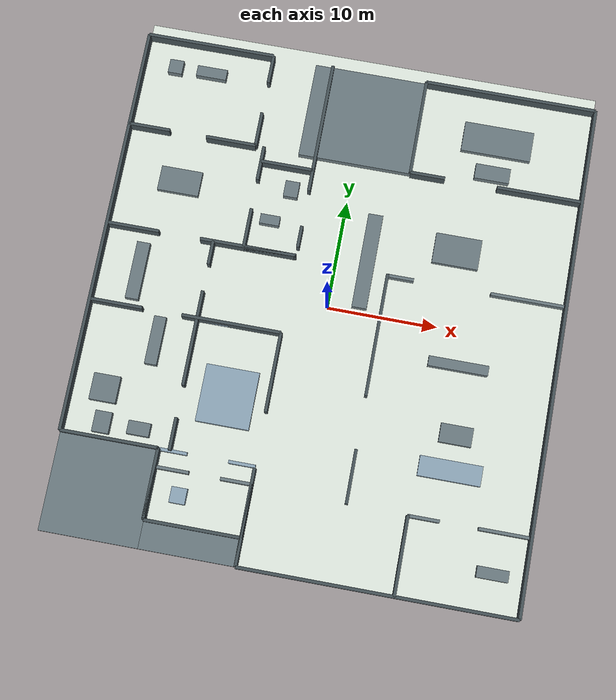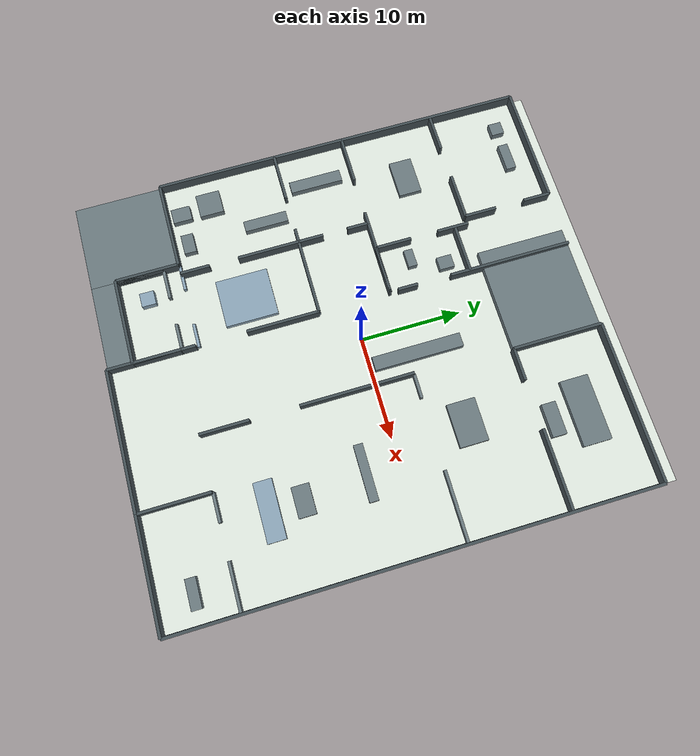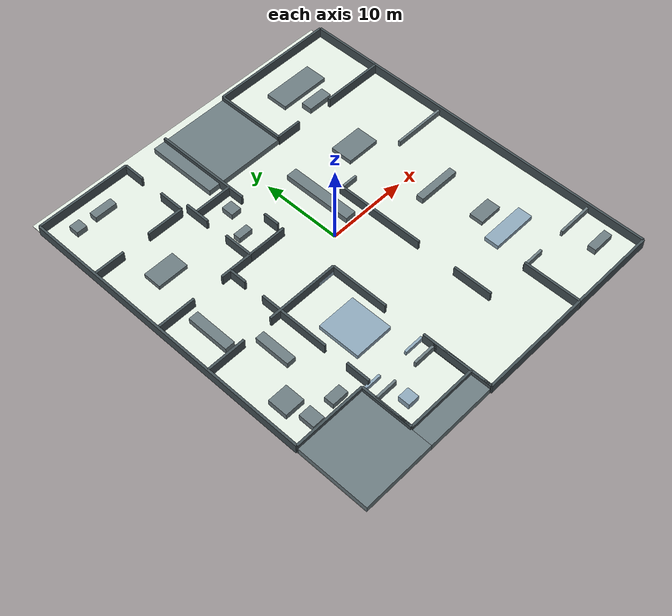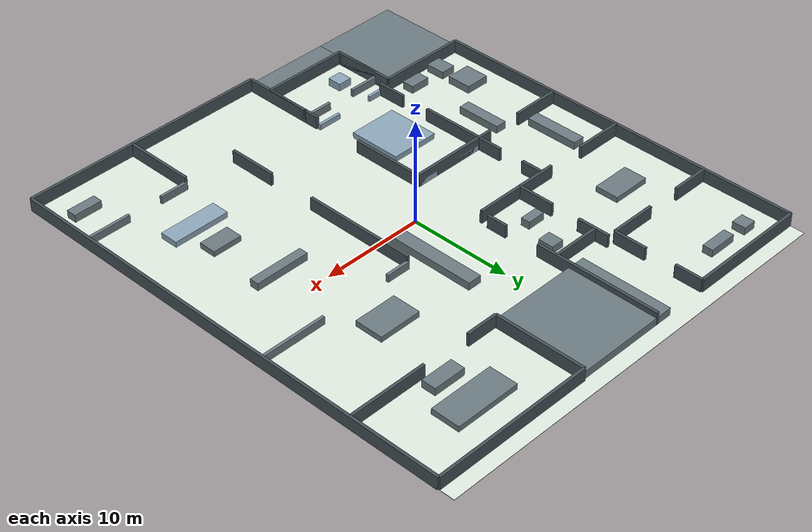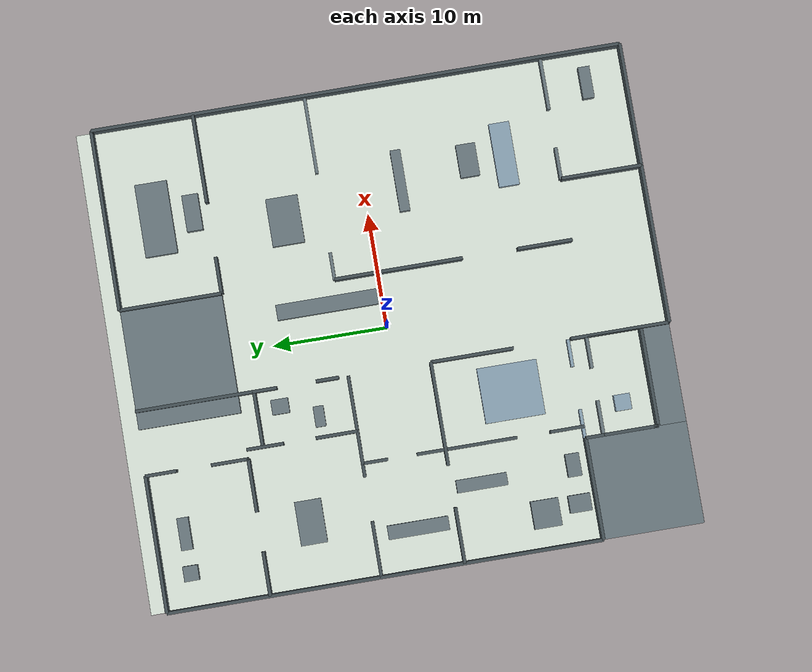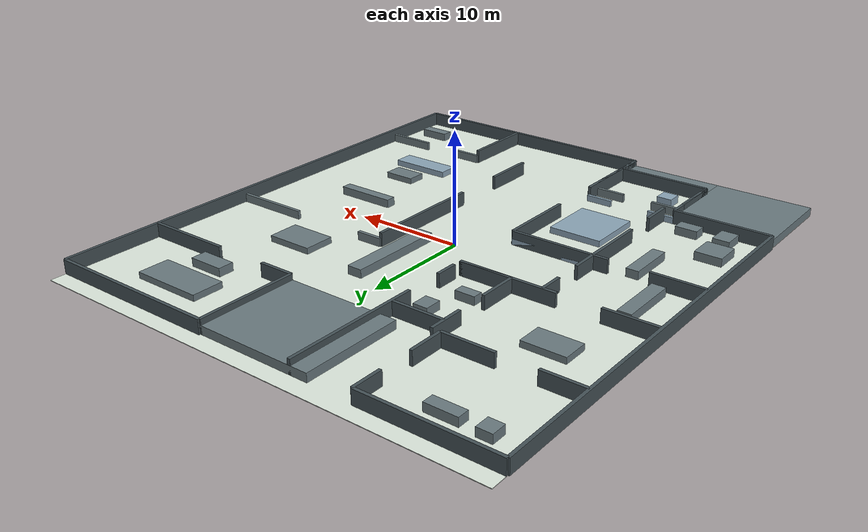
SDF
<?xml version="1.0" ?>
<sdf version="1.6">
  <world name="reference_villa_ground">
    <gravity>0 0 -9.8</gravity>
    <scene>
      <ambient>0.65 0.65 0.65 1</ambient>
      <background>0.78 0.84 0.88 1</background>
    </scene>
    <include>
      <uri>model://sun</uri>
    </include>
    <model name="reference_villa_ground_floor">
      <static>true</static>
      <pose>0.000 0.000 -0.025 0 0 0</pose>
      <link name="floor_link">
        <collision name="floor_collision">
          <geometry>
            <box><size>42.000 48.000 0.050</size></box>
          </geometry>
        </collision>
        <visual name="floor_visual">
          <geometry>
            <box><size>42.000 48.000 0.050</size></box>
          </geometry>
          <material><ambient>0.88 0.92 0.88 1</ambient><diffuse>0.88 0.92 0.88 1</diffuse></material>
        </visual>
      </link>
    </model>
    <model name="villa_outer_north_left">
      <static>true</static>
      <pose>-15.100 22.500 0.625 0 0 0</pose>
      <link name="villa_outer_north_left_link">
        <collision name="villa_outer_north_left_collision">
          <geometry>
            <box><size>11.800 0.280 1.250</size></box>
          </geometry>
        </collision>
        <visual name="villa_outer_north_left_visual">
          <geometry>
            <box><size>11.800 0.280 1.250</size></box>
          </geometry>
          <material><ambient>0.27 0.32 0.34 1</ambient><diffuse>0.27 0.32 0.34 1</diffuse></material>
        </visual>
      </link>
    </model>
    <model name="villa_outer_north_right">
      <static>true</static>
      <pose>13.100 22.500 0.625 0 0 0</pose>
      <link name="villa_outer_north_right_link">
        <collision name="villa_outer_north_right_collision">
          <geometry>
            <box><size>15.800 0.280 1.250</size></box>
          </geometry>
        </collision>
        <visual name="villa_outer_north_right_visual">
          <geometry>
            <box><size>15.800 0.280 1.250</size></box>
          </geometry>
          <material><ambient>0.27 0.32 0.34 1</ambient><diffuse>0.27 0.32 0.34 1</diffuse></material>
        </visual>
      </link>
    </model>
    <model name="villa_outer_west_upper">
      <static>true</static>
      <pose>-21.000 3.650 0.625 0 0 0</pose>
      <link name="villa_outer_west_upper_link">
        <collision name="villa_outer_west_upper_collision">
          <geometry>
            <box><size>0.280 37.700 1.250</size></box>
          </geometry>
        </collision>
        <visual name="villa_outer_west_upper_visual">
          <geometry>
            <box><size>0.280 37.700 1.250</size></box>
          </geometry>
          <material><ambient>0.27 0.32 0.34 1</ambient><diffuse>0.27 0.32 0.34 1</diffuse></material>
        </visual>
      </link>
    </model>
    <model name="villa_outer_left_bottom">
      <static>true</static>
      <pose>-16.600 -15.200 0.625 0 0 0</pose>
      <link name="villa_outer_left_bottom_link">
        <collision name="villa_outer_left_bottom_collision">
          <geometry>
            <box><size>8.800 0.280 1.250</size></box>
          </geometry>
        </collision>
        <visual name="villa_outer_left_bottom_visual">
          <geometry>
            <box><size>8.800 0.280 1.250</size></box>
          </geometry>
          <material><ambient>0.27 0.32 0.34 1</ambient><diffuse>0.27 0.32 0.34 1</diffuse></material>
        </visual>
      </link>
    </model>
    <model name="villa_outer_balcony_west">
      <static>true</static>
      <pose>-12.200 -18.350 0.625 0 0 0</pose>
      <link name="villa_outer_balcony_west_link">
        <collision name="villa_outer_balcony_west_collision">
          <geometry>
            <box><size>0.280 6.300 1.250</size></box>
          </geometry>
        </collision>
        <visual name="villa_outer_balcony_west_visual">
          <geometry>
            <box><size>0.280 6.300 1.250</size></box>
          </geometry>
          <material><ambient>0.27 0.32 0.34 1</ambient><diffuse>0.27 0.32 0.34 1</diffuse></material>
        </visual>
      </link>
    </model>
    <model name="villa_outer_balcony_south">
      <static>true</static>
      <pose>-7.900 -21.500 0.625 0 0 0</pose>
      <link name="villa_outer_balcony_south_link">
        <collision name="villa_outer_balcony_south_collision">
          <geometry>
            <box><size>8.600 0.280 1.250</size></box>
          </geometry>
        </collision>
        <visual name="villa_outer_balcony_south_visual">
          <geometry>
            <box><size>8.600 0.280 1.250</size></box>
          </geometry>
          <material><ambient>0.27 0.32 0.34 1</ambient><diffuse>0.27 0.32 0.34 1</diffuse></material>
        </visual>
      </link>
    </model>
    <model name="villa_outer_balcony_east">
      <static>true</static>
      <pose>-3.600 -20.400 0.625 0 0 0</pose>
      <link name="villa_outer_balcony_east_link">
        <collision name="villa_outer_balcony_east_collision">
          <geometry>
            <box><size>0.280 7.200 1.250</size></box>
          </geometry>
        </collision>
        <visual name="villa_outer_balcony_east_visual">
          <geometry>
            <box><size>0.280 7.200 1.250</size></box>
          </geometry>
          <material><ambient>0.27 0.32 0.34 1</ambient><diffuse>0.27 0.32 0.34 1</diffuse></material>
        </visual>
      </link>
    </model>
    <model name="villa_outer_hall_south">
      <static>true</static>
      <pose>3.300 -24.000 0.625 0 0 0</pose>
      <link name="villa_outer_hall_south_link">
        <collision name="villa_outer_hall_south_collision">
          <geometry>
            <box><size>13.800 0.280 1.250</size></box>
          </geometry>
        </collision>
        <visual name="villa_outer_hall_south_visual">
          <geometry>
            <box><size>13.800 0.280 1.250</size></box>
          </geometry>
          <material><ambient>0.27 0.32 0.34 1</ambient><diffuse>0.27 0.32 0.34 1</diffuse></material>
        </visual>
      </link>
    </model>
    <model name="villa_outer_foyer_west">
      <static>true</static>
      <pose>10.200 -20.500 0.625 0 0 0</pose>
      <link name="villa_outer_foyer_west_link">
        <collision name="villa_outer_foyer_west_collision">
          <geometry>
            <box><size>0.280 7.000 1.250</size></box>
          </geometry>
        </collision>
        <visual name="villa_outer_foyer_west_visual">
          <geometry>
            <box><size>0.280 7.000 1.250</size></box>
          </geometry>
          <material><ambient>0.27 0.32 0.34 1</ambient><diffuse>0.27 0.32 0.34 1</diffuse></material>
        </visual>
      </link>
    </model>
    <model name="villa_outer_foyer_south">
      <static>true</static>
      <pose>15.600 -24.000 0.625 0 0 0</pose>
      <link name="villa_outer_foyer_south_link">
        <collision name="villa_outer_foyer_south_collision">
          <geometry>
            <box><size>10.800 0.280 1.250</size></box>
          </geometry>
        </collision>
        <visual name="villa_outer_foyer_south_visual">
          <geometry>
            <box><size>10.800 0.280 1.250</size></box>
          </geometry>
          <material><ambient>0.27 0.32 0.34 1</ambient><diffuse>0.27 0.32 0.34 1</diffuse></material>
        </visual>
      </link>
    </model>
    <model name="villa_outer_east">
      <static>true</static>
      <pose>21.000 -0.750 0.625 0 0 0</pose>
      <link name="villa_outer_east_link">
        <collision name="villa_outer_east_collision">
          <geometry>
            <box><size>0.280 46.500 1.250</size></box>
          </geometry>
        </collision>
        <visual name="villa_outer_east_visual">
          <geometry>
            <box><size>0.280 46.500 1.250</size></box>
          </geometry>
          <material><ambient>0.27 0.32 0.34 1</ambient><diffuse>0.27 0.32 0.34 1</diffuse></material>
        </visual>
      </link>
    </model>
    <model name="villa_exterior_void_sw">
      <static>true</static>
      <pose>-16.600 -19.600 0.375 0 0 0</pose>
      <link name="villa_exterior_void_sw_link">
        <collision name="villa_exterior_void_sw_collision">
          <geometry>
            <box><size>8.800 8.800 0.750</size></box>
          </geometry>
        </collision>
        <visual name="villa_exterior_void_sw_visual">
          <geometry>
            <box><size>8.800 8.800 0.750</size></box>
          </geometry>
          <material><ambient>0.42 0.48 0.50 1</ambient><diffuse>0.42 0.48 0.50 1</diffuse></material>
        </visual>
      </link>
    </model>
    <model name="villa_exterior_void_s_center">
      <static>true</static>
      <pose>-7.900 -22.750 0.375 0 0 0</pose>
      <link name="villa_exterior_void_s_center_link">
        <collision name="villa_exterior_void_s_center_collision">
          <geometry>
            <box><size>8.600 2.500 0.750</size></box>
          </geometry>
        </collision>
        <visual name="villa_exterior_void_s_center_visual">
          <geometry>
            <box><size>8.600 2.500 0.750</size></box>
          </geometry>
          <material><ambient>0.42 0.48 0.50 1</ambient><diffuse>0.42 0.48 0.50 1</diffuse></material>
        </visual>
      </link>
    </model>
    <model name="villa_exterior_void_top_center">
      <static>true</static>
      <pose>0.000 18.050 0.375 0 0 0</pose>
      <link name="villa_exterior_void_top_center_link">
        <collision name="villa_exterior_void_top_center_collision">
          <geometry>
            <box><size>10.400 8.900 0.750</size></box>
          </geometry>
        </collision>
        <visual name="villa_exterior_void_top_center_visual">
          <geometry>
            <box><size>10.400 8.900 0.750</size></box>
          </geometry>
          <material><ambient>0.42 0.48 0.50 1</ambient><diffuse>0.42 0.48 0.50 1</diffuse></material>
        </visual>
      </link>
    </model>
    <model name="villa_laundry_bottom_wall_w">
      <static>true</static>
      <pose>-19.100 13.600 0.625 0 0 0</pose>
      <link name="villa_laundry_bottom_wall_w_link">
        <collision name="villa_laundry_bottom_wall_w_collision">
          <geometry>
            <box><size>3.800 0.280 1.250</size></box>
          </geometry>
        </collision>
        <visual name="villa_laundry_bottom_wall_w_visual">
          <geometry>
            <box><size>3.800 0.280 1.250</size></box>
          </geometry>
          <material><ambient>0.27 0.32 0.34 1</ambient><diffuse>0.27 0.32 0.34 1</diffuse></material>
        </visual>
      </link>
    </model>
    <model name="villa_laundry_bottom_wall_e">
      <static>true</static>
      <pose>-11.500 13.600 0.625 0 0 0</pose>
      <link name="villa_laundry_bottom_wall_e_link">
        <collision name="villa_laundry_bottom_wall_e_collision">
          <geometry>
            <box><size>4.600 0.280 1.250</size></box>
          </geometry>
        </collision>
        <visual name="villa_laundry_bottom_wall_e_visual">
          <geometry>
            <box><size>4.600 0.280 1.250</size></box>
          </geometry>
          <material><ambient>0.27 0.32 0.34 1</ambient><diffuse>0.27 0.32 0.34 1</diffuse></material>
        </visual>
      </link>
    </model>
    <model name="villa_laundry_right_wall_s">
      <static>true</static>
      <pose>-9.200 15.200 0.625 0 0 0</pose>
      <link name="villa_laundry_right_wall_s_link">
        <collision name="villa_laundry_right_wall_s_collision">
          <geometry>
            <box><size>0.280 3.200 1.250</size></box>
          </geometry>
        </collision>
        <visual name="villa_laundry_right_wall_s_visual">
          <geometry>
            <box><size>0.280 3.200 1.250</size></box>
          </geometry>
          <material><ambient>0.27 0.32 0.34 1</ambient><diffuse>0.27 0.32 0.34 1</diffuse></material>
        </visual>
      </link>
    </model>
    <model name="villa_laundry_right_wall_n">
      <static>true</static>
      <pose>-9.200 21.150 0.625 0 0 0</pose>
      <link name="villa_laundry_right_wall_n_link">
        <collision name="villa_laundry_right_wall_n_collision">
          <geometry>
            <box><size>0.280 2.700 1.250</size></box>
          </geometry>
        </collision>
        <visual name="villa_laundry_right_wall_n_visual">
          <geometry>
            <box><size>0.280 2.700 1.250</size></box>
          </geometry>
          <material><ambient>0.27 0.32 0.34 1</ambient><diffuse>0.27 0.32 0.34 1</diffuse></material>
        </visual>
      </link>
    </model>
    <model name="villa_kitchen_bottom_wall_w">
      <static>true</static>
      <pose>6.800 13.600 0.625 0 0 0</pose>
      <link name="villa_kitchen_bottom_wall_w_link">
        <collision name="villa_kitchen_bottom_wall_w_collision">
          <geometry>
            <box><size>3.200 0.280 1.250</size></box>
          </geometry>
        </collision>
        <visual name="villa_kitchen_bottom_wall_w_visual">
          <geometry>
            <box><size>3.200 0.280 1.250</size></box>
          </geometry>
          <material><ambient>0.27 0.32 0.34 1</ambient><diffuse>0.27 0.32 0.34 1</diffuse></material>
        </visual>
      </link>
    </model>
    <model name="villa_kitchen_bottom_wall_e">
      <static>true</static>
      <pose>17.100 13.600 0.625 0 0 0</pose>
      <link name="villa_kitchen_bottom_wall_e_link">
        <collision name="villa_kitchen_bottom_wall_e_collision">
          <geometry>
            <box><size>7.800 0.280 1.250</size></box>
          </geometry>
        </collision>
        <visual name="villa_kitchen_bottom_wall_e_visual">
          <geometry>
            <box><size>7.800 0.280 1.250</size></box>
          </geometry>
          <material><ambient>0.27 0.32 0.34 1</ambient><diffuse>0.27 0.32 0.34 1</diffuse></material>
        </visual>
      </link>
    </model>
    <model name="villa_kitchen_left_wall">
      <static>true</static>
      <pose>5.200 18.050 0.625 0 0 0</pose>
      <link name="villa_kitchen_left_wall_link">
        <collision name="villa_kitchen_left_wall_collision">
          <geometry>
            <box><size>0.280 8.900 1.250</size></box>
          </geometry>
        </collision>
        <visual name="villa_kitchen_left_wall_visual">
          <geometry>
            <box><size>0.280 8.900 1.250</size></box>
          </geometry>
          <material><ambient>0.27 0.32 0.34 1</ambient><diffuse>0.27 0.32 0.34 1</diffuse></material>
        </visual>
      </link>
    </model>
    <model name="villa_hall_left_wall_s">
      <static>true</static>
      <pose>-3.600 -19.700 0.625 0 0 0</pose>
      <link name="villa_hall_left_wall_s_link">
        <collision name="villa_hall_left_wall_s_collision">
          <geometry>
            <box><size>0.280 8.600 1.250</size></box>
          </geometry>
        </collision>
        <visual name="villa_hall_left_wall_s_visual">
          <geometry>
            <box><size>0.280 8.600 1.250</size></box>
          </geometry>
          <material><ambient>0.27 0.32 0.34 1</ambient><diffuse>0.27 0.32 0.34 1</diffuse></material>
        </visual>
      </link>
    </model>
    <model name="villa_hall_left_wall_m">
      <static>true</static>
      <pose>-3.600 -6.800 0.625 0 0 0</pose>
      <link name="villa_hall_left_wall_m_link">
        <collision name="villa_hall_left_wall_m_collision">
          <geometry>
            <box><size>0.280 7.200 1.250</size></box>
          </geometry>
        </collision>
        <visual name="villa_hall_left_wall_m_visual">
          <geometry>
            <box><size>0.280 7.200 1.250</size></box>
          </geometry>
          <material><ambient>0.27 0.32 0.34 1</ambient><diffuse>0.27 0.32 0.34 1</diffuse></material>
        </visual>
      </link>
    </model>
    <model name="villa_hall_left_wall_n_lower">
      <static>true</static>
      <pose>-3.600 5.800 0.625 0 0 0</pose>
      <link name="villa_hall_left_wall_n_lower_link">
        <collision name="villa_hall_left_wall_n_lower_collision">
          <geometry>
            <box><size>0.280 2.000 1.250</size></box>
          </geometry>
        </collision>
        <visual name="villa_hall_left_wall_n_lower_visual">
          <geometry>
            <box><size>0.280 2.000 1.250</size></box>
          </geometry>
          <material><ambient>0.27 0.32 0.34 1</ambient><diffuse>0.27 0.32 0.34 1</diffuse></material>
        </visual>
      </link>
    </model>
    <model name="villa_hall_left_wall_n_upper">
      <static>true</static>
      <pose>-3.600 16.350 0.625 0 0 0</pose>
      <link name="villa_hall_left_wall_n_upper_link">
        <collision name="villa_hall_left_wall_n_upper_collision">
          <geometry>
            <box><size>0.280 12.300 1.250</size></box>
          </geometry>
        </collision>
        <visual name="villa_hall_left_wall_n_upper_visual">
          <geometry>
            <box><size>0.280 12.300 1.250</size></box>
          </geometry>
          <material><ambient>0.27 0.32 0.34 1</ambient><diffuse>0.27 0.32 0.34 1</diffuse></material>
        </visual>
      </link>
    </model>
    <model name="villa_craft_bottom_wall_w">
      <static>true</static>
      <pose>-18.600 4.000 0.625 0 0 0</pose>
      <link name="villa_craft_bottom_wall_w_link">
        <collision name="villa_craft_bottom_wall_w_collision">
          <geometry>
            <box><size>4.800 0.280 1.250</size></box>
          </geometry>
        </collision>
        <visual name="villa_craft_bottom_wall_w_visual">
          <geometry>
            <box><size>4.800 0.280 1.250</size></box>
          </geometry>
          <material><ambient>0.27 0.32 0.34 1</ambient><diffuse>0.27 0.32 0.34 1</diffuse></material>
        </visual>
      </link>
    </model>
    <model name="villa_craft_bottom_wall_e">
      <static>true</static>
      <pose>-8.000 4.000 0.625 0 0 0</pose>
      <link name="villa_craft_bottom_wall_e_link">
        <collision name="villa_craft_bottom_wall_e_collision">
          <geometry>
            <box><size>8.800 0.280 1.250</size></box>
          </geometry>
        </collision>
        <visual name="villa_craft_bottom_wall_e_visual">
          <geometry>
            <box><size>8.800 0.280 1.250</size></box>
          </geometry>
          <material><ambient>0.27 0.32 0.34 1</ambient><diffuse>0.27 0.32 0.34 1</diffuse></material>
        </visual>
      </link>
    </model>
    <model name="villa_craft_top_wall_w">
      <static>true</static>
      <pose>-19.100 13.600 0.625 0 0 0</pose>
      <link name="villa_craft_top_wall_w_link">
        <collision name="villa_craft_top_wall_w_collision">
          <geometry>
            <box><size>3.800 0.280 1.250</size></box>
          </geometry>
        </collision>
        <visual name="villa_craft_top_wall_w_visual">
          <geometry>
            <box><size>3.800 0.280 1.250</size></box>
          </geometry>
          <material><ambient>0.27 0.32 0.34 1</ambient><diffuse>0.27 0.32 0.34 1</diffuse></material>
        </visual>
      </link>
    </model>
    <model name="villa_craft_top_wall_e">
      <static>true</static>
      <pose>-11.500 13.600 0.625 0 0 0</pose>
      <link name="villa_craft_top_wall_e_link">
        <collision name="villa_craft_top_wall_e_collision">
          <geometry>
            <box><size>4.600 0.280 1.250</size></box>
          </geometry>
        </collision>
        <visual name="villa_craft_top_wall_e_visual">
          <geometry>
            <box><size>4.600 0.280 1.250</size></box>
          </geometry>
          <material><ambient>0.27 0.32 0.34 1</ambient><diffuse>0.27 0.32 0.34 1</diffuse></material>
        </visual>
      </link>
    </model>
    <model name="villa_craft_bath_wall_s">
      <static>true</static>
      <pose>-8.400 5.800 0.625 0 0 0</pose>
      <link name="villa_craft_bath_wall_s_link">
        <collision name="villa_craft_bath_wall_s_collision">
          <geometry>
            <box><size>0.280 3.600 1.250</size></box>
          </geometry>
        </collision>
        <visual name="villa_craft_bath_wall_s_visual">
          <geometry>
            <box><size>0.280 3.600 1.250</size></box>
          </geometry>
          <material><ambient>0.27 0.32 0.34 1</ambient><diffuse>0.27 0.32 0.34 1</diffuse></material>
        </visual>
      </link>
    </model>
    <model name="villa_craft_bath_wall_n">
      <static>true</static>
      <pose>-8.400 12.000 0.625 0 0 0</pose>
      <link name="villa_craft_bath_wall_n_link">
        <collision name="villa_craft_bath_wall_n_collision">
          <geometry>
            <box><size>0.280 3.200 1.250</size></box>
          </geometry>
        </collision>
        <visual name="villa_craft_bath_wall_n_visual">
          <geometry>
            <box><size>0.280 3.200 1.250</size></box>
          </geometry>
          <material><ambient>0.27 0.32 0.34 1</ambient><diffuse>0.27 0.32 0.34 1</diffuse></material>
        </visual>
      </link>
    </model>
    <model name="villa_bath_bottom_wall">
      <static>true</static>
      <pose>-6.000 4.000 0.625 0 0 0</pose>
      <link name="villa_bath_bottom_wall_link">
        <collision name="villa_bath_bottom_wall_collision">
          <geometry>
            <box><size>4.800 0.280 1.250</size></box>
          </geometry>
        </collision>
        <visual name="villa_bath_bottom_wall_visual">
          <geometry>
            <box><size>4.800 0.280 1.250</size></box>
          </geometry>
          <material><ambient>0.27 0.32 0.34 1</ambient><diffuse>0.27 0.32 0.34 1</diffuse></material>
        </visual>
      </link>
    </model>
    <model name="villa_bath_top_wall">
      <static>true</static>
      <pose>-6.000 12.200 0.625 0 0 0</pose>
      <link name="villa_bath_top_wall_link">
        <collision name="villa_bath_top_wall_collision">
          <geometry>
            <box><size>4.800 0.280 1.250</size></box>
          </geometry>
        </collision>
        <visual name="villa_bath_top_wall_visual">
          <geometry>
            <box><size>4.800 0.280 1.250</size></box>
          </geometry>
          <material><ambient>0.27 0.32 0.34 1</ambient><diffuse>0.27 0.32 0.34 1</diffuse></material>
        </visual>
      </link>
    </model>
    <model name="villa_cloak_elder_wall_w">
      <static>true</static>
      <pose>-18.600 -3.200 0.625 0 0 0</pose>
      <link name="villa_cloak_elder_wall_w_link">
        <collision name="villa_cloak_elder_wall_w_collision">
          <geometry>
            <box><size>4.800 0.280 1.250</size></box>
          </geometry>
        </collision>
        <visual name="villa_cloak_elder_wall_w_visual">
          <geometry>
            <box><size>4.800 0.280 1.250</size></box>
          </geometry>
          <material><ambient>0.27 0.32 0.34 1</ambient><diffuse>0.27 0.32 0.34 1</diffuse></material>
        </visual>
      </link>
    </model>
    <model name="villa_cloak_elder_wall_e">
      <static>true</static>
      <pose>-8.100 -3.200 0.625 0 0 0</pose>
      <link name="villa_cloak_elder_wall_e_link">
        <collision name="villa_cloak_elder_wall_e_collision">
          <geometry>
            <box><size>9.000 0.280 1.250</size></box>
          </geometry>
        </collision>
        <visual name="villa_cloak_elder_wall_e_visual">
          <geometry>
            <box><size>9.000 0.280 1.250</size></box>
          </geometry>
          <material><ambient>0.27 0.32 0.34 1</ambient><diffuse>0.27 0.32 0.34 1</diffuse></material>
        </visual>
      </link>
    </model>
    <model name="villa_cloak_right_wall_s">
      <static>true</static>
      <pose>-11.200 -1.950 0.625 0 0 0</pose>
      <link name="villa_cloak_right_wall_s_link">
        <collision name="villa_cloak_right_wall_s_collision">
          <geometry>
            <box><size>0.280 2.500 1.250</size></box>
          </geometry>
        </collision>
        <visual name="villa_cloak_right_wall_s_visual">
          <geometry>
            <box><size>0.280 2.500 1.250</size></box>
          </geometry>
          <material><ambient>0.27 0.32 0.34 1</ambient><diffuse>0.27 0.32 0.34 1</diffuse></material>
        </visual>
      </link>
    </model>
    <model name="villa_cloak_right_wall_n">
      <static>true</static>
      <pose>-11.200 2.900 0.625 0 0 0</pose>
      <link name="villa_cloak_right_wall_n_link">
        <collision name="villa_cloak_right_wall_n_collision">
          <geometry>
            <box><size>0.280 2.200 1.250</size></box>
          </geometry>
        </collision>
        <visual name="villa_cloak_right_wall_n_visual">
          <geometry>
            <box><size>0.280 2.200 1.250</size></box>
          </geometry>
          <material><ambient>0.27 0.32 0.34 1</ambient><diffuse>0.27 0.32 0.34 1</diffuse></material>
        </visual>
      </link>
    </model>
    <model name="villa_elder_bed_bottom_w">
      <static>true</static>
      <pose>-10.950 -15.200 0.275 0 0 0</pose>
      <link name="villa_elder_bed_bottom_w_link">
        <collision name="villa_elder_bed_bottom_w_collision">
          <geometry>
            <box><size>2.500 0.280 0.550</size></box>
          </geometry>
        </collision>
        <visual name="villa_elder_bed_bottom_w_visual">
          <geometry>
            <box><size>2.500 0.280 0.550</size></box>
          </geometry>
          <material><ambient>0.55 0.65 0.72 1</ambient><diffuse>0.55 0.65 0.72 1</diffuse></material>
        </visual>
      </link>
    </model>
    <model name="villa_elder_bed_bottom_e">
      <static>true</static>
      <pose>-4.800 -15.200 0.275 0 0 0</pose>
      <link name="villa_elder_bed_bottom_e_link">
        <collision name="villa_elder_bed_bottom_e_collision">
          <geometry>
            <box><size>2.400 0.280 0.550</size></box>
          </geometry>
        </collision>
        <visual name="villa_elder_bed_bottom_e_visual">
          <geometry>
            <box><size>2.400 0.280 0.550</size></box>
          </geometry>
          <material><ambient>0.55 0.65 0.72 1</ambient><diffuse>0.55 0.65 0.72 1</diffuse></material>
        </visual>
      </link>
    </model>
    <model name="villa_elder_bed_top_w">
      <static>true</static>
      <pose>-9.700 -3.200 0.275 0 0 0</pose>
      <link name="villa_elder_bed_top_w_link">
        <collision name="villa_elder_bed_top_w_collision">
          <geometry>
            <box><size>2.600 0.280 0.550</size></box>
          </geometry>
        </collision>
        <visual name="villa_elder_bed_top_w_visual">
          <geometry>
            <box><size>2.600 0.280 0.550</size></box>
          </geometry>
          <material><ambient>0.55 0.65 0.72 1</ambient><diffuse>0.55 0.65 0.72 1</diffuse></material>
        </visual>
      </link>
    </model>
    <model name="villa_elder_bed_top_e">
      <static>true</static>
      <pose>-4.700 -3.200 0.275 0 0 0</pose>
      <link name="villa_elder_bed_top_e_link">
        <collision name="villa_elder_bed_top_e_collision">
          <geometry>
            <box><size>2.200 0.280 0.550</size></box>
          </geometry>
        </collision>
        <visual name="villa_elder_bed_top_e_visual">
          <geometry>
            <box><size>2.200 0.280 0.550</size></box>
          </geometry>
          <material><ambient>0.55 0.65 0.72 1</ambient><diffuse>0.55 0.65 0.72 1</diffuse></material>
        </visual>
      </link>
    </model>
    <model name="villa_elder_bath_right_wall_s">
      <static>true</static>
      <pose>-11.200 -13.750 0.625 0 0 0</pose>
      <link name="villa_elder_bath_right_wall_s_link">
        <collision name="villa_elder_bath_right_wall_s_collision">
          <geometry>
            <box><size>0.280 2.900 1.250</size></box>
          </geometry>
        </collision>
        <visual name="villa_elder_bath_right_wall_s_visual">
          <geometry>
            <box><size>0.280 2.900 1.250</size></box>
          </geometry>
          <material><ambient>0.27 0.32 0.34 1</ambient><diffuse>0.27 0.32 0.34 1</diffuse></material>
        </visual>
      </link>
    </model>
    <model name="villa_elder_bath_right_wall_n">
      <static>true</static>
      <pose>-11.200 -6.300 0.625 0 0 0</pose>
      <link name="villa_elder_bath_right_wall_n_link">
        <collision name="villa_elder_bath_right_wall_n_collision">
          <geometry>
            <box><size>0.280 6.200 1.250</size></box>
          </geometry>
        </collision>
        <visual name="villa_elder_bath_right_wall_n_visual">
          <geometry>
            <box><size>0.280 6.200 1.250</size></box>
          </geometry>
          <material><ambient>0.27 0.32 0.34 1</ambient><diffuse>0.27 0.32 0.34 1</diffuse></material>
        </visual>
      </link>
    </model>
    <model name="villa_balcony_top_w">
      <static>true</static>
      <pose>-10.700 -16.800 0.375 0 0 0</pose>
      <link name="villa_balcony_top_w_link">
        <collision name="villa_balcony_top_w_collision">
          <geometry>
            <box><size>3.000 0.280 0.750</size></box>
          </geometry>
        </collision>
        <visual name="villa_balcony_top_w_visual">
          <geometry>
            <box><size>3.000 0.280 0.750</size></box>
          </geometry>
          <material><ambient>0.42 0.48 0.50 1</ambient><diffuse>0.42 0.48 0.50 1</diffuse></material>
        </visual>
      </link>
    </model>
    <model name="villa_balcony_top_e">
      <static>true</static>
      <pose>-5.000 -16.800 0.375 0 0 0</pose>
      <link name="villa_balcony_top_e_link">
        <collision name="villa_balcony_top_e_collision">
          <geometry>
            <box><size>2.800 0.280 0.750</size></box>
          </geometry>
        </collision>
        <visual name="villa_balcony_top_e_visual">
          <geometry>
            <box><size>2.800 0.280 0.750</size></box>
          </geometry>
          <material><ambient>0.42 0.48 0.50 1</ambient><diffuse>0.42 0.48 0.50 1</diffuse></material>
        </visual>
      </link>
    </model>
    <model name="villa_balcony_left_wall">
      <static>true</static>
      <pose>-12.200 -19.150 0.625 0 0 0</pose>
      <link name="villa_balcony_left_wall_link">
        <collision name="villa_balcony_left_wall_collision">
          <geometry>
            <box><size>0.280 4.700 1.250</size></box>
          </geometry>
        </collision>
        <visual name="villa_balcony_left_wall_visual">
          <geometry>
            <box><size>0.280 4.700 1.250</size></box>
          </geometry>
          <material><ambient>0.27 0.32 0.34 1</ambient><diffuse>0.27 0.32 0.34 1</diffuse></material>
        </visual>
      </link>
    </model>
    <model name="villa_balcony_right_wall">
      <static>true</static>
      <pose>-3.600 -19.150 0.625 0 0 0</pose>
      <link name="villa_balcony_right_wall_link">
        <collision name="villa_balcony_right_wall_collision">
          <geometry>
            <box><size>0.280 4.700 1.250</size></box>
          </geometry>
        </collision>
        <visual name="villa_balcony_right_wall_visual">
          <geometry>
            <box><size>0.280 4.700 1.250</size></box>
          </geometry>
          <material><ambient>0.27 0.32 0.34 1</ambient><diffuse>0.27 0.32 0.34 1</diffuse></material>
        </visual>
      </link>
    </model>
    <model name="villa_living_top_w">
      <static>true</static>
      <pose>6.000 3.800 0.375 0 0 0</pose>
      <link name="villa_living_top_w_link">
        <collision name="villa_living_top_w_collision">
          <geometry>
            <box><size>2.400 0.280 0.750</size></box>
          </geometry>
        </collision>
        <visual name="villa_living_top_w_visual">
          <geometry>
            <box><size>2.400 0.280 0.750</size></box>
          </geometry>
          <material><ambient>0.42 0.48 0.50 1</ambient><diffuse>0.42 0.48 0.50 1</diffuse></material>
        </visual>
      </link>
    </model>
    <model name="villa_living_top_e">
      <static>true</static>
      <pose>17.600 3.800 0.375 0 0 0</pose>
      <link name="villa_living_top_e_link">
        <collision name="villa_living_top_e_collision">
          <geometry>
            <box><size>6.800 0.280 0.750</size></box>
          </geometry>
        </collision>
        <visual name="villa_living_top_e_visual">
          <geometry>
            <box><size>6.800 0.280 0.750</size></box>
          </geometry>
          <material><ambient>0.42 0.48 0.50 1</ambient><diffuse>0.42 0.48 0.50 1</diffuse></material>
        </visual>
      </link>
    </model>
    <model name="villa_living_left_wall_s">
      <static>true</static>
      <pose>4.800 -14.600 0.625 0 0 0</pose>
      <link name="villa_living_left_wall_s_link">
        <collision name="villa_living_left_wall_s_collision">
          <geometry>
            <box><size>0.280 4.800 1.250</size></box>
          </geometry>
        </collision>
        <visual name="villa_living_left_wall_s_visual">
          <geometry>
            <box><size>0.280 4.800 1.250</size></box>
          </geometry>
          <material><ambient>0.27 0.32 0.34 1</ambient><diffuse>0.27 0.32 0.34 1</diffuse></material>
        </visual>
      </link>
    </model>
    <model name="villa_living_left_wall_n">
      <static>true</static>
      <pose>4.800 -1.800 0.625 0 0 0</pose>
      <link name="villa_living_left_wall_n_link">
        <collision name="villa_living_left_wall_n_collision">
          <geometry>
            <box><size>0.280 11.200 1.250</size></box>
          </geometry>
        </collision>
        <visual name="villa_living_left_wall_n_visual">
          <geometry>
            <box><size>0.280 11.200 1.250</size></box>
          </geometry>
          <material><ambient>0.27 0.32 0.34 1</ambient><diffuse>0.27 0.32 0.34 1</diffuse></material>
        </visual>
      </link>
    </model>
    <model name="villa_foyer_top_w">
      <static>true</static>
      <pose>11.600 -17.000 0.375 0 0 0</pose>
      <link name="villa_foyer_top_w_link">
        <collision name="villa_foyer_top_w_collision">
          <geometry>
            <box><size>2.800 0.280 0.750</size></box>
          </geometry>
        </collision>
        <visual name="villa_foyer_top_w_visual">
          <geometry>
            <box><size>2.800 0.280 0.750</size></box>
          </geometry>
          <material><ambient>0.42 0.48 0.50 1</ambient><diffuse>0.42 0.48 0.50 1</diffuse></material>
        </visual>
      </link>
    </model>
    <model name="villa_foyer_top_e">
      <static>true</static>
      <pose>18.700 -17.000 0.375 0 0 0</pose>
      <link name="villa_foyer_top_e_link">
        <collision name="villa_foyer_top_e_collision">
          <geometry>
            <box><size>4.600 0.280 0.750</size></box>
          </geometry>
        </collision>
        <visual name="villa_foyer_top_e_visual">
          <geometry>
            <box><size>4.600 0.280 0.750</size></box>
          </geometry>
          <material><ambient>0.42 0.48 0.50 1</ambient><diffuse>0.42 0.48 0.50 1</diffuse></material>
        </visual>
      </link>
    </model>
    <model name="villa_foyer_left_wall">
      <static>true</static>
      <pose>10.200 -20.500 0.625 0 0 0</pose>
      <link name="villa_foyer_left_wall_link">
        <collision name="villa_foyer_left_wall_collision">
          <geometry>
            <box><size>0.280 7.000 1.250</size></box>
          </geometry>
        </collision>
        <visual name="villa_foyer_left_wall_visual">
          <geometry>
            <box><size>0.280 7.000 1.250</size></box>
          </geometry>
          <material><ambient>0.27 0.32 0.34 1</ambient><diffuse>0.27 0.32 0.34 1</diffuse></material>
        </visual>
      </link>
    </model>
    <model name="villa_kitchen_counter">
      <static>true</static>
      <pose>12.600 18.200 0.275 0 0 0</pose>
      <link name="villa_kitchen_counter_link">
        <collision name="villa_kitchen_counter_collision">
          <geometry>
            <box><size>6.400 2.800 0.550</size></box>
          </geometry>
        </collision>
        <visual name="villa_kitchen_counter_visual">
          <geometry>
            <box><size>6.400 2.800 0.550</size></box>
          </geometry>
          <material><ambient>0.42 0.48 0.50 1</ambient><diffuse>0.42 0.48 0.50 1</diffuse></material>
        </visual>
      </link>
    </model>
    <model name="villa_kitchen_island">
      <static>true</static>
      <pose>12.600 15.000 0.375 0 0 0</pose>
      <link name="villa_kitchen_island_link">
        <collision name="villa_kitchen_island_collision">
          <geometry>
            <box><size>3.200 1.400 0.750</size></box>
          </geometry>
        </collision>
        <visual name="villa_kitchen_island_visual">
          <geometry>
            <box><size>3.200 1.400 0.750</size></box>
          </geometry>
          <material><ambient>0.42 0.48 0.50 1</ambient><diffuse>0.42 0.48 0.50 1</diffuse></material>
        </visual>
      </link>
    </model>
    <model name="villa_washer">
      <static>true</static>
      <pose>-18.000 20.000 0.375 0 0 0</pose>
      <link name="villa_washer_link">
        <collision name="villa_washer_collision">
          <geometry>
            <box><size>1.300 1.300 0.750</size></box>
          </geometry>
        </collision>
        <visual name="villa_washer_visual">
          <geometry>
            <box><size>1.300 1.300 0.750</size></box>
          </geometry>
          <material><ambient>0.42 0.48 0.50 1</ambient><diffuse>0.42 0.48 0.50 1</diffuse></material>
        </visual>
      </link>
    </model>
    <model name="villa_laundry_sink">
      <static>true</static>
      <pose>-14.600 20.000 0.375 0 0 0</pose>
      <link name="villa_laundry_sink_link">
        <collision name="villa_laundry_sink_collision">
          <geometry>
            <box><size>2.800 1.000 0.750</size></box>
          </geometry>
        </collision>
        <visual name="villa_laundry_sink_visual">
          <geometry>
            <box><size>2.800 1.000 0.750</size></box>
          </geometry>
          <material><ambient>0.42 0.48 0.50 1</ambient><diffuse>0.42 0.48 0.50 1</diffuse></material>
        </visual>
      </link>
    </model>
    <model name="villa_dining_table">
      <static>true</static>
      <pose>10.600 7.200 0.275 0 0 0</pose>
      <link name="villa_dining_table_link">
        <collision name="villa_dining_table_collision">
          <geometry>
            <box><size>4.200 2.800 0.550</size></box>
          </geometry>
        </collision>
        <visual name="villa_dining_table_visual">
          <geometry>
            <box><size>4.200 2.800 0.550</size></box>
          </geometry>
          <material><ambient>0.42 0.48 0.50 1</ambient><diffuse>0.42 0.48 0.50 1</diffuse></material>
        </visual>
      </link>
    </model>
    <model name="villa_stairs_block">
      <static>true</static>
      <pose>2.800 4.800 0.375 0 0 0</pose>
      <link name="villa_stairs_block_link">
        <collision name="villa_stairs_block_collision">
          <geometry>
            <box><size>1.350 8.800 0.750</size></box>
          </geometry>
        </collision>
        <visual name="villa_stairs_block_visual">
          <geometry>
            <box><size>1.350 8.800 0.750</size></box>
          </geometry>
          <material><ambient>0.42 0.48 0.50 1</ambient><diffuse>0.42 0.48 0.50 1</diffuse></material>
        </visual>
      </link>
    </model>
    <model name="villa_living_sofa">
      <static>true</static>
      <pose>13.200 -12.500 0.275 0 0 0</pose>
      <link name="villa_living_sofa_link">
        <collision name="villa_living_sofa_collision">
          <geometry>
            <box><size>5.600 1.800 0.550</size></box>
          </geometry>
        </collision>
        <visual name="villa_living_sofa_visual">
          <geometry>
            <box><size>5.600 1.800 0.550</size></box>
          </geometry>
          <material><ambient>0.55 0.65 0.72 1</ambient><diffuse>0.55 0.65 0.72 1</diffuse></material>
        </visual>
      </link>
    </model>
    <model name="villa_living_table">
      <static>true</static>
      <pose>13.200 -9.300 0.275 0 0 0</pose>
      <link name="villa_living_table_link">
        <collision name="villa_living_table_collision">
          <geometry>
            <box><size>2.900 1.700 0.550</size></box>
          </geometry>
        </collision>
        <visual name="villa_living_table_visual">
          <geometry>
            <box><size>2.900 1.700 0.550</size></box>
          </geometry>
          <material><ambient>0.42 0.48 0.50 1</ambient><diffuse>0.42 0.48 0.50 1</diffuse></material>
        </visual>
      </link>
    </model>
    <model name="villa_tv_console">
      <static>true</static>
      <pose>12.400 -3.200 0.375 0 0 0</pose>
      <link name="villa_tv_console_link">
        <collision name="villa_tv_console_collision">
          <geometry>
            <box><size>5.400 0.900 0.750</size></box>
          </geometry>
        </collision>
        <visual name="villa_tv_console_visual">
          <geometry>
            <box><size>5.400 0.900 0.750</size></box>
          </geometry>
          <material><ambient>0.42 0.48 0.50 1</ambient><diffuse>0.42 0.48 0.50 1</diffuse></material>
        </visual>
      </link>
    </model>
    <model name="villa_elder_bed">
      <static>true</static>
      <pose>-7.200 -9.600 0.275 0 0 0</pose>
      <link name="villa_elder_bed_link">
        <collision name="villa_elder_bed_collision">
          <geometry>
            <box><size>4.800 5.200 0.550</size></box>
          </geometry>
        </collision>
        <visual name="villa_elder_bed_visual">
          <geometry>
            <box><size>4.800 5.200 0.550</size></box>
          </geometry>
          <material><ambient>0.55 0.65 0.72 1</ambient><diffuse>0.55 0.65 0.72 1</diffuse></material>
        </visual>
      </link>
    </model>
    <model name="villa_elder_closet">
      <static>true</static>
      <pose>-14.500 -5.800 0.375 0 0 0</pose>
      <link name="villa_elder_closet_link">
        <collision name="villa_elder_closet_collision">
          <geometry>
            <box><size>1.100 4.400 0.750</size></box>
          </geometry>
        </collision>
        <visual name="villa_elder_closet_visual">
          <geometry>
            <box><size>1.100 4.400 0.750</size></box>
          </geometry>
          <material><ambient>0.42 0.48 0.50 1</ambient><diffuse>0.42 0.48 0.50 1</diffuse></material>
        </visual>
      </link>
    </model>
    <model name="villa_craft_table">
      <static>true</static>
      <pose>-15.400 9.200 0.275 0 0 0</pose>
      <link name="villa_craft_table_link">
        <collision name="villa_craft_table_collision">
          <geometry>
            <box><size>3.800 2.300 0.550</size></box>
          </geometry>
        </collision>
        <visual name="villa_craft_table_visual">
          <geometry>
            <box><size>3.800 2.300 0.550</size></box>
          </geometry>
          <material><ambient>0.42 0.48 0.50 1</ambient><diffuse>0.42 0.48 0.50 1</diffuse></material>
        </visual>
      </link>
    </model>
    <model name="villa_cloak_storage">
      <static>true</static>
      <pose>-17.400 0.200 0.375 0 0 0</pose>
      <link name="villa_cloak_storage_link">
        <collision name="villa_cloak_storage_collision">
          <geometry>
            <box><size>1.200 5.300 0.750</size></box>
          </geometry>
        </collision>
        <visual name="villa_cloak_storage_visual">
          <geometry>
            <box><size>1.200 5.300 0.750</size></box>
          </geometry>
          <material><ambient>0.42 0.48 0.50 1</ambient><diffuse>0.42 0.48 0.50 1</diffuse></material>
        </visual>
      </link>
    </model>
    <model name="villa_bath_toilet">
      <static>true</static>
      <pose>-5.200 10.200 0.375 0 0 0</pose>
      <link name="villa_bath_toilet_link">
        <collision name="villa_bath_toilet_collision">
          <geometry>
            <box><size>1.300 1.500 0.750</size></box>
          </geometry>
        </collision>
        <visual name="villa_bath_toilet_visual">
          <geometry>
            <box><size>1.300 1.500 0.750</size></box>
          </geometry>
          <material><ambient>0.42 0.48 0.50 1</ambient><diffuse>0.42 0.48 0.50 1</diffuse></material>
        </visual>
      </link>
    </model>
    <model name="villa_bath_sink">
      <static>true</static>
      <pose>-6.600 7.000 0.375 0 0 0</pose>
      <link name="villa_bath_sink_link">
        <collision name="villa_bath_sink_collision">
          <geometry>
            <box><size>1.800 0.900 0.750</size></box>
          </geometry>
        </collision>
        <visual name="villa_bath_sink_visual">
          <geometry>
            <box><size>1.800 0.900 0.750</size></box>
          </geometry>
          <material><ambient>0.42 0.48 0.50 1</ambient><diffuse>0.42 0.48 0.50 1</diffuse></material>
        </visual>
      </link>
    </model>
    <model name="villa_elder_shower">
      <static>true</static>
      <pose>-18.000 -10.800 0.375 0 0 0</pose>
      <link name="villa_elder_shower_link">
        <collision name="villa_elder_shower_collision">
          <geometry>
            <box><size>2.400 2.400 0.750</size></box>
          </geometry>
        </collision>
        <visual name="villa_elder_shower_visual">
          <geometry>
            <box><size>2.400 2.400 0.750</size></box>
          </geometry>
          <material><ambient>0.42 0.48 0.50 1</ambient><diffuse>0.42 0.48 0.50 1</diffuse></material>
        </visual>
      </link>
    </model>
    <model name="villa_elder_toilet">
      <static>true</static>
      <pose>-17.600 -13.800 0.375 0 0 0</pose>
      <link name="villa_elder_toilet_link">
        <collision name="villa_elder_toilet_collision">
          <geometry>
            <box><size>1.500 1.900 0.750</size></box>
          </geometry>
        </collision>
        <visual name="villa_elder_toilet_visual">
          <geometry>
            <box><size>1.500 1.900 0.750</size></box>
          </geometry>
          <material><ambient>0.42 0.48 0.50 1</ambient><diffuse>0.42 0.48 0.50 1</diffuse></material>
        </visual>
      </link>
    </model>
    <model name="villa_elder_sink">
      <static>true</static>
      <pose>-14.300 -13.800 0.375 0 0 0</pose>
      <link name="villa_elder_sink_link">
        <collision name="villa_elder_sink_collision">
          <geometry>
            <box><size>2.000 1.200 0.750</size></box>
          </geometry>
        </collision>
        <visual name="villa_elder_sink_visual">
          <geometry>
            <box><size>2.000 1.200 0.750</size></box>
          </geometry>
          <material><ambient>0.42 0.48 0.50 1</ambient><diffuse>0.42 0.48 0.50 1</diffuse></material>
        </visual>
      </link>
    </model>
    <model name="villa_balcony_chair">
      <static>true</static>
      <pose>-9.700 -18.900 0.375 0 0 0</pose>
      <link name="villa_balcony_chair_link">
        <collision name="villa_balcony_chair_collision">
          <geometry>
            <box><size>1.400 1.400 0.750</size></box>
          </geometry>
        </collision>
        <visual name="villa_balcony_chair_visual">
          <geometry>
            <box><size>1.400 1.400 0.750</size></box>
          </geometry>
          <material><ambient>0.55 0.65 0.72 1</ambient><diffuse>0.55 0.65 0.72 1</diffuse></material>
        </visual>
      </link>
    </model>
    <model name="villa_foyer_console">
      <static>true</static>
      <pose>18.200 -20.600 0.375 0 0 0</pose>
      <link name="villa_foyer_console_link">
        <collision name="villa_foyer_console_collision">
          <geometry>
            <box><size>2.800 1.000 0.750</size></box>
          </geometry>
        </collision>
        <visual name="villa_foyer_console_visual">
          <geometry>
            <box><size>2.800 1.000 0.750</size></box>
          </geometry>
          <material><ambient>0.42 0.48 0.50 1</ambient><diffuse>0.42 0.48 0.50 1</diffuse></material>
        </visual>
      </link>
    </model>
  </world>
</sdf>
